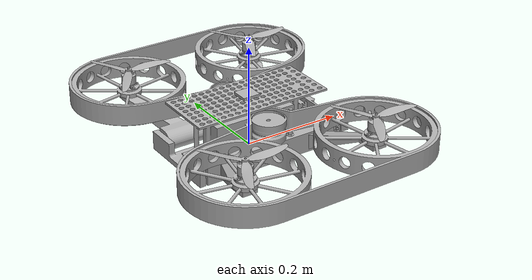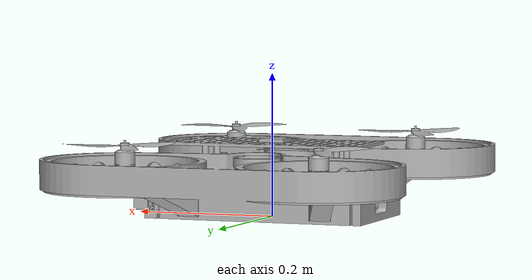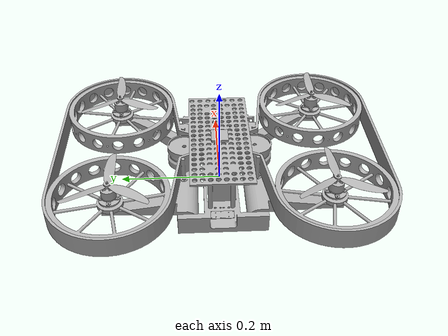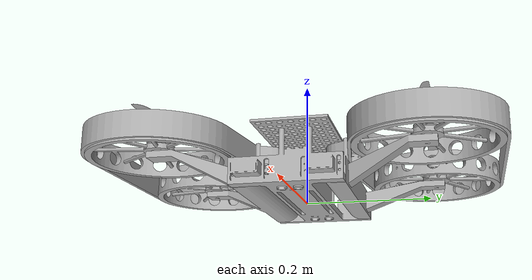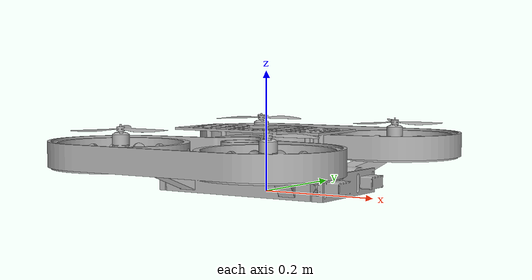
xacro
<?xml version="1.0" ?>
<robot name="fs_bot" xmlns:xacro="http://www.ros.org/wiki/xacro">

<xacro:include filename="$(find fs_bot_description)/urdf/materials.xacro" />
<xacro:include filename="$(find fs_bot_description)/urdf/fs_bot.trans" />
<xacro:include filename="$(find fs_bot_description)/urdf/fs_bot.gazebo" />
<link name="base_link">
  <inertial>
    <origin xyz="0.007571869047072704 -0.00016152471900191312 0.036280217609948026" rpy="0 0 0"/>
    <mass value="1.0059973901812376"/>
    <inertia ixx="0.00168" iyy="0.008545" izz="0.008471" ixy="2e-06" iyz="1e-06" ixz="0.000175"/>
  </inertial>
  <visual>
    <origin xyz="0 0 0" rpy="0 0 0"/>
    <geometry>
      <mesh filename="file://$(find fs_bot_description)/meshes/base_link.stl" scale="0.001 0.001 0.001"/>
    </geometry>
    <material name="silver"/>
  </visual>
  <collision>
    <origin xyz="0 0 0" rpy="0 0 0"/>
    <geometry>
      <mesh filename="file://$(find fs_bot_description)/meshes/base_link.stl" scale="0.001 0.001 0.001"/>
    </geometry>
  </collision>
</link>

<link name="ultrasonic_1_1">
  <inertial>
    <origin xyz="-1.7826697198491948e-05 6.853199746267687e-08 -0.001621573135525474" rpy="0 0 0"/>
    <mass value="0.020157969134118457"/>
    <inertia ixx="4e-06" iyy="1e-06" izz="4e-06" ixy="0.0" iyz="-0.0" ixz="0.0"/>
  </inertial>
  <visual>
    <origin xyz="-0.123239 0.0 -0.0095" rpy="0 0 0"/>
    <geometry>
      <mesh filename="file://$(find fs_bot_description)/meshes/ultrasonic_1_1.stl" scale="0.001 0.001 0.001"/>
    </geometry>
    <material name="silver"/>
  </visual>
  <collision>
    <origin xyz="-0.123239 0.0 -0.0095" rpy="0 0 0"/>
    <geometry>
      <mesh filename="file://$(find fs_bot_description)/meshes/ultrasonic_1_1.stl" scale="0.001 0.001 0.001"/>
    </geometry>
  </collision>
</link>

<link name="ultrasonic_2_1">
  <inertial>
    <origin xyz="1.7386291992535496e-05 6.853199728973652e-08 -0.0016215731355255399" rpy="0 0 0"/>
    <mass value="0.020157969134118832"/>
    <inertia ixx="4e-06" iyy="1e-06" izz="4e-06" ixy="-0.0" iyz="-0.0" ixz="-0.0"/>
  </inertial>
  <visual>
    <origin xyz="0.125 0.0 -0.0095" rpy="0 0 0"/>
    <geometry>
      <mesh filename="file://$(find fs_bot_description)/meshes/ultrasonic_2_1.stl" scale="0.001 0.001 0.001"/>
    </geometry>
    <material name="silver"/>
  </visual>
  <collision>
    <origin xyz="0.125 0.0 -0.0095" rpy="0 0 0"/>
    <geometry>
      <mesh filename="file://$(find fs_bot_description)/meshes/ultrasonic_2_1.stl" scale="0.001 0.001 0.001"/>
    </geometry>
  </collision>
</link>

<link name="imu_link">
  <inertial>
    <origin xyz="-5.7880600094067924e-08 9.739392775881951e-07 0.00250014404383829" rpy="0 0 0"/>
    <mass value="0.046625356642602804"/>
    <inertia ixx="4e-06" iyy="5e-06" izz="9e-06" ixy="-0.0" iyz="-0.0" ixz="0.0"/>
  </inertial>
  <visual>
    <origin xyz="0.00445 0.000361 -0.104939" rpy="0 0 0"/>
    <geometry>
      <mesh filename="file://$(find fs_bot_description)/meshes/imu_1.stl" scale="0.001 0.001 0.001"/>
    </geometry>
    <material name="silver"/>
  </visual>
  <collision>
    <origin xyz="0.00445 0.000361 -0.104939" rpy="0 0 0"/>
    <geometry>
      <mesh filename="file://$(find fs_bot_description)/meshes/imu_1.stl" scale="0.001 0.001 0.001"/>
    </geometry>
  </collision>
</link>

<link name="arm_link_left_1">
  <inertial>
    <origin xyz="-0.1428377228286246 0.058929160039874376 0.021300849529735964" rpy="0 0 0"/>
    <mass value="0.8445351612998211"/>
    <inertia ixx="0.006565" iyy="0.0131" izz="0.018523" ixy="-3e-05" iyz="-0.001174" ixz="-1.3e-05"/>
  </inertial>
  <visual>
    <origin xyz="-0.138232 -0.064 -0.02" rpy="0 0 0"/>
    <geometry>
      <mesh filename="file://$(find fs_bot_description)/meshes/arm_link_left_1.stl" scale="0.001 0.001 0.001"/>
    </geometry>
    <material name="silver"/>
  </visual>
  <collision>
    <origin xyz="-0.138232 -0.064 -0.02" rpy="0 0 0"/>
    <geometry>
      <mesh filename="file://$(find fs_bot_description)/meshes/arm_link_left_1.stl" scale="0.001 0.001 0.001"/>
    </geometry>
  </collision>
</link>

<link name="arm_link_right_1">
  <inertial>
    <origin xyz="-0.14284512463737475 -0.058924861867011846 0.021300399200247292" rpy="0 0 0"/>
    <mass value="0.8444903587044942"/>
    <inertia ixx="0.006565" iyy="0.013099" izz="0.018522" ixy="2.9e-05" iyz="0.001174" ixz="-1.3e-05"/>
  </inertial>
  <visual>
    <origin xyz="-0.138232 0.064637 -0.02" rpy="0 0 0"/>
    <geometry>
      <mesh filename="file://$(find fs_bot_description)/meshes/arm_link_right_1.stl" scale="0.001 0.001 0.001"/>
    </geometry>
    <material name="silver"/>
  </visual>
  <collision>
    <origin xyz="-0.138232 0.064637 -0.02" rpy="0 0 0"/>
    <geometry>
      <mesh filename="file://$(find fs_bot_description)/meshes/arm_link_right_1.stl" scale="0.001 0.001 0.001"/>
    </geometry>
  </collision>
</link>

<link name="track_pulley_left_1">
  <inertial>
    <origin xyz="2.7876095501453563e-07 -2.9271255461149615e-07 0.02132921258113743" rpy="0 0 0"/>
    <mass value="0.8358355047423307"/>
    <inertia ixx="0.000307" iyy="0.000307" izz="0.000445" ixy="0.0" iyz="0.0" ixz="0.0"/>
  </inertial>
  <visual>
    <origin xyz="0.004036 -0.069595 -0.0465" rpy="0 0 0"/>
    <geometry>
      <mesh filename="file://$(find fs_bot_description)/meshes/track_pulley_left_1.stl" scale="0.001 0.001 0.001"/>
    </geometry>
    <material name="silver"/>
  </visual>
  <collision>
    <origin xyz="0.004036 -0.069595 -0.0465" rpy="0 0 0"/>
    <geometry>
      <mesh filename="file://$(find fs_bot_description)/meshes/track_pulley_left_1.stl" scale="0.001 0.001 0.001"/>
    </geometry>
  </collision>
</link>

<link name="track_pulley_right_1">
  <inertial>
    <origin xyz="2.7876095387655703e-07 2.927125502261152e-07 0.021329212581137395" rpy="0 0 0"/>
    <mass value="0.8358355047423313"/>
    <inertia ixx="0.000307" iyy="0.000307" izz="0.000445" ixy="0.0" iyz="0.0" ixz="0.0"/>
  </inertial>
  <visual>
    <origin xyz="0.004036 0.070232 -0.0459" rpy="0 0 0"/>
    <geometry>
      <mesh filename="file://$(find fs_bot_description)/meshes/track_pulley_right_1.stl" scale="0.001 0.001 0.001"/>
    </geometry>
    <material name="silver"/>
  </visual>
  <collision>
    <origin xyz="0.004036 0.070232 -0.0459" rpy="0 0 0"/>
    <geometry>
      <mesh filename="file://$(find fs_bot_description)/meshes/track_pulley_right_1.stl" scale="0.001 0.001 0.001"/>
    </geometry>
  </collision>
</link>

<link name="track_support_fl_1">
  <inertial>
    <origin xyz="-1.8222479994112195e-06 -1.2190745093676458e-06 -0.0017623264611049266" rpy="0 0 0"/>
    <mass value="0.23025526483312964"/>
    <inertia ixx="0.001209" iyy="0.001209" izz="0.002348" ixy="0.0" iyz="-0.0" ixz="0.0"/>
  </inertial>
  <visual>
    <origin xyz="-0.134964 -0.204 -0.0703" rpy="0 0 0"/>
    <geometry>
      <mesh filename="file://$(find fs_bot_description)/meshes/track_support_fl_1.stl" scale="0.001 0.001 0.001"/>
    </geometry>
    <material name="silver"/>
  </visual>
  <collision>
    <origin xyz="-0.134964 -0.204 -0.0703" rpy="0 0 0"/>
    <geometry>
      <mesh filename="file://$(find fs_bot_description)/meshes/track_support_fl_1.stl" scale="0.001 0.001 0.001"/>
    </geometry>
  </collision>
</link>

<link name="track_support_rl_1">
  <inertial>
    <origin xyz="2.2994083317406933e-06 -1.217247173890268e-06 -0.0017759614126644646" rpy="0 0 0"/>
    <mass value="0.23034535568638667"/>
    <inertia ixx="0.001209" iyy="0.001209" izz="0.002348" ixy="-0.0" iyz="-0.0" ixz="0.0"/>
  </inertial>
  <visual>
    <origin xyz="0.143036 -0.204 -0.0703" rpy="0 0 0"/>
    <geometry>
      <mesh filename="file://$(find fs_bot_description)/meshes/track_support_rl_1.stl" scale="0.001 0.001 0.001"/>
    </geometry>
    <material name="silver"/>
  </visual>
  <collision>
    <origin xyz="0.143036 -0.204 -0.0703" rpy="0 0 0"/>
    <geometry>
      <mesh filename="file://$(find fs_bot_description)/meshes/track_support_rl_1.stl" scale="0.001 0.001 0.001"/>
    </geometry>
  </collision>
</link>

<link name="track_support_fr_1">
  <inertial>
    <origin xyz="-1.8222647101551193e-06 1.2193703985696747e-06 -0.0017623264838048242" rpy="0 0 0"/>
    <mass value="0.2302552653293439"/>
    <inertia ixx="0.001209" iyy="0.001209" izz="0.002348" ixy="-0.0" iyz="0.0" ixz="0.0"/>
  </inertial>
  <visual>
    <origin xyz="-0.134964 0.204637 -0.0703" rpy="0 0 0"/>
    <geometry>
      <mesh filename="file://$(find fs_bot_description)/meshes/track_support_fr_1.stl" scale="0.001 0.001 0.001"/>
    </geometry>
    <material name="silver"/>
  </visual>
  <collision>
    <origin xyz="-0.134964 0.204637 -0.0703" rpy="0 0 0"/>
    <geometry>
      <mesh filename="file://$(find fs_bot_description)/meshes/track_support_fr_1.stl" scale="0.001 0.001 0.001"/>
    </geometry>
  </collision>
</link>

<link name="track_support_rr_1">
  <inertial>
    <origin xyz="2.299408277200987e-06 1.217425781907533e-06 -0.0017759614132562274" rpy="0 0 0"/>
    <mass value="0.23034535569885076"/>
    <inertia ixx="0.001209" iyy="0.001209" izz="0.002348" ixy="0.0" iyz="0.0" ixz="0.0"/>
  </inertial>
  <visual>
    <origin xyz="0.143036 0.204637 -0.0703" rpy="0 0 0"/>
    <geometry>
      <mesh filename="file://$(find fs_bot_description)/meshes/track_support_rr_1.stl" scale="0.001 0.001 0.001"/>
    </geometry>
    <material name="silver"/>
  </visual>
  <collision>
    <origin xyz="0.143036 0.204637 -0.0703" rpy="0 0 0"/>
    <geometry>
      <mesh filename="file://$(find fs_bot_description)/meshes/track_support_rr_1.stl" scale="0.001 0.001 0.001"/>
    </geometry>
  </collision>
</link>

<link name="bldc_motor_1_1">
  <inertial>
    <origin xyz="-3.13401487095355e-07 5.924505283028125e-07 0.013696512860461751" rpy="0 0 0"/>
    <mass value="0.10785871798850041"/>
    <inertia ixx="1.1e-05" iyy="1.1e-05" izz="1e-05" ixy="0.0" iyz="0.0" ixz="-0.0"/>
  </inertial>
  <visual>
    <origin xyz="-0.134964 -0.204 -0.0773" rpy="0 0 0"/>
    <geometry>
      <mesh filename="file://$(find fs_bot_description)/meshes/bldc_motor_1_1.stl" scale="0.001 0.001 0.001"/>
    </geometry>
    <material name="silver"/>
  </visual>
  <collision>
    <origin xyz="-0.134964 -0.204 -0.0773" rpy="0 0 0"/>
    <geometry>
      <mesh filename="file://$(find fs_bot_description)/meshes/bldc_motor_1_1.stl" scale="0.001 0.001 0.001"/>
    </geometry>
  </collision>
</link>

<link name="propeller_1_1">
  <inertial>
    <origin xyz="-4.909743015396595e-06 -9.120790755434705e-06 0.002979288442366501" rpy="0 0 0"/>
    <mass value="0.004466869702984192"/>
    <inertia ixx="3e-06" iyy="3e-06" izz="6e-06" ixy="-0.0" iyz="-0.0" ixz="-0.0"/>
  </inertial>
  <visual>
    <origin xyz="-0.134964 -0.204 -0.1062" rpy="0 0 0"/>
    <geometry>
      <mesh filename="file://$(find fs_bot_description)/meshes/propeller_1_1.stl" scale="0.001 0.001 0.001"/>
    </geometry>
    <material name="silver"/>
  </visual>
  <collision>
    <origin xyz="-0.134964 -0.204 -0.1062" rpy="0 0 0"/>
    <geometry>
      <mesh filename="file://$(find fs_bot_description)/meshes/propeller_1_1.stl" scale="0.001 0.001 0.001"/>
    </geometry>
  </collision>
</link>

<link name="bldc_motor_2_1">
  <inertial>
    <origin xyz="8.709233691173157e-07 5.924504642706996e-07 0.013696512860478446" rpy="0 0 0"/>
    <mass value="0.1078587179885"/>
    <inertia ixx="1.1e-05" iyy="1.1e-05" izz="1e-05" ixy="-0.0" iyz="0.0" ixz="0.0"/>
  </inertial>
  <visual>
    <origin xyz="0.143036 -0.204 -0.0773" rpy="0 0 0"/>
    <geometry>
      <mesh filename="file://$(find fs_bot_description)/meshes/bldc_motor_2_1.stl" scale="0.001 0.001 0.001"/>
    </geometry>
    <material name="silver"/>
  </visual>
  <collision>
    <origin xyz="0.143036 -0.204 -0.0773" rpy="0 0 0"/>
    <geometry>
      <mesh filename="file://$(find fs_bot_description)/meshes/bldc_motor_2_1.stl" scale="0.001 0.001 0.001"/>
    </geometry>
  </collision>
</link>

<link name="propeller_2_1">
  <inertial>
    <origin xyz="-4.909743039738235e-06 9.120790688516012e-06 0.004270711557639362" rpy="0 0 0"/>
    <mass value="0.004466869702984191"/>
    <inertia ixx="3e-06" iyy="3e-06" izz="6e-06" ixy="0.0" iyz="-0.0" ixz="0.0"/>
  </inertial>
  <visual>
    <origin xyz="0.143036 -0.204 -0.1062" rpy="0 0 0"/>
    <geometry>
      <mesh filename="file://$(find fs_bot_description)/meshes/propeller_2_1.stl" scale="0.001 0.001 0.001"/>
    </geometry>
    <material name="silver"/>
  </visual>
  <collision>
    <origin xyz="0.143036 -0.204 -0.1062" rpy="0 0 0"/>
    <geometry>
      <mesh filename="file://$(find fs_bot_description)/meshes/propeller_2_1.stl" scale="0.001 0.001 0.001"/>
    </geometry>
  </collision>
</link>

<link name="bldc_motor_3_1">
  <inertial>
    <origin xyz="-2.9992360750519254e-07 -5.783959688976381e-07 0.013696512860461599" rpy="0 0 0"/>
    <mass value="0.1078587179884996"/>
    <inertia ixx="1.1e-05" iyy="1.1e-05" izz="1e-05" ixy="-0.0" iyz="-0.0" ixz="-0.0"/>
  </inertial>
  <visual>
    <origin xyz="-0.134964 0.204637 -0.0773" rpy="0 0 0"/>
    <geometry>
      <mesh filename="file://$(find fs_bot_description)/meshes/bldc_motor_3_1.stl" scale="0.001 0.001 0.001"/>
    </geometry>
    <material name="silver"/>
  </visual>
  <collision>
    <origin xyz="-0.134964 0.204637 -0.0773" rpy="0 0 0"/>
    <geometry>
      <mesh filename="file://$(find fs_bot_description)/meshes/bldc_motor_3_1.stl" scale="0.001 0.001 0.001"/>
    </geometry>
  </collision>
</link>

<link name="propeller_3_1">
  <inertial>
    <origin xyz="-4.909743015396595e-06 9.120790755351438e-06 0.004270711557622722" rpy="0 0 0"/>
    <mass value="0.004466869702984214"/>
    <inertia ixx="3e-06" iyy="3e-06" izz="6e-06" ixy="0.0" iyz="-0.0" ixz="0.0"/>
  </inertial>
  <visual>
    <origin xyz="-0.134964 0.204637 -0.1062" rpy="0 0 0"/>
    <geometry>
      <mesh filename="file://$(find fs_bot_description)/meshes/propeller_3_1.stl" scale="0.001 0.001 0.001"/>
    </geometry>
    <material name="silver"/>
  </visual>
  <collision>
    <origin xyz="-0.134964 0.204637 -0.1062" rpy="0 0 0"/>
    <geometry>
      <mesh filename="file://$(find fs_bot_description)/meshes/propeller_3_1.stl" scale="0.001 0.001 0.001"/>
    </geometry>
  </collision>
</link>

<link name="bldc_motor_4_1">
  <inertial>
    <origin xyz="8.574454892773531e-07 -5.783959054761478e-07 0.013696512860478752" rpy="0 0 0"/>
    <mass value="0.10785871798849818"/>
    <inertia ixx="1.1e-05" iyy="1.1e-05" izz="1e-05" ixy="0.0" iyz="-0.0" ixz="0.0"/>
  </inertial>
  <visual>
    <origin xyz="0.143036 0.204637 -0.0773" rpy="0 0 0"/>
    <geometry>
      <mesh filename="file://$(find fs_bot_description)/meshes/bldc_motor_4_1.stl" scale="0.001 0.001 0.001"/>
    </geometry>
    <material name="silver"/>
  </visual>
  <collision>
    <origin xyz="0.143036 0.204637 -0.0773" rpy="0 0 0"/>
    <geometry>
      <mesh filename="file://$(find fs_bot_description)/meshes/bldc_motor_4_1.stl" scale="0.001 0.001 0.001"/>
    </geometry>
  </collision>
</link>

<link name="propeller_4_1">
  <inertial>
    <origin xyz="-4.909743040348857e-06 -9.120790688543767e-06 0.002979288442383196" rpy="0 0 0"/>
    <mass value="0.004466869702984186"/>
    <inertia ixx="3e-06" iyy="3e-06" izz="6e-06" ixy="-0.0" iyz="-0.0" ixz="-0.0"/>
  </inertial>
  <visual>
    <origin xyz="0.143036 0.204637 -0.1062" rpy="0 0 0"/>
    <geometry>
      <mesh filename="file://$(find fs_bot_description)/meshes/propeller_4_1.stl" scale="0.001 0.001 0.001"/>
    </geometry>
    <material name="silver"/>
  </visual>
  <collision>
    <origin xyz="0.143036 0.204637 -0.1062" rpy="0 0 0"/>
    <geometry>
      <mesh filename="file://$(find fs_bot_description)/meshes/propeller_4_1.stl" scale="0.001 0.001 0.001"/>
    </geometry>
  </collision>
</link>

<joint name="Rigid 1" type="fixed">
  <origin xyz="0.123239 0.0 0.0095" rpy="0 0 0"/>
  <parent link="base_link"/>
  <child link="ultrasonic_1_1"/>
</joint>

<joint name="Rigid 2" type="fixed">
  <origin xyz="-0.125 0.0 0.0095" rpy="0 0 0"/>
  <parent link="base_link"/>
  <child link="ultrasonic_2_1"/>
</joint>

<joint name="Rigid 3" type="fixed">
  <origin xyz="-0.00445 -0.000361 0.104939" rpy="0 0 0"/>
  <parent link="base_link"/>
  <child link="imu_link"/>
</joint>

<joint name="arm_base_left_joint" type="revolute">
  <origin xyz="0.138232 0.064 0.02" rpy="0 0 0"/>
  <parent link="base_link"/>
  <child link="arm_link_left_1"/>
  <axis xyz="1.0 0.0 0.0"/>
  <limit effort="1000.0" lower="${-pi/2}" upper="0.0" velocity="0.1"/>
</joint>

<joint name="arm_base_right_joint" type="revolute">
  <origin xyz="0.138232 -0.064637 0.02" rpy="0 0 0"/>
  <parent link="base_link"/>
  <child link="arm_link_right_1"/>
  <axis xyz="-1.0 0.0 0.0"/>
  <limit effort="1000.0" lower="${-pi/2}" upper="0.0" velocity="0.1"/>
</joint>

<joint name="pulley_left_joint" type="continuous">
  <origin xyz="-0.142268 0.005595 0.0265" rpy="0 0 0"/>
  <parent link="arm_link_left_1"/>
  <child link="track_pulley_left_1"/>
  <axis xyz="-0.0 -0.0 1.0"/>
</joint>

<joint name="puller_right_joint" type="continuous">
  <origin xyz="-0.142268 -0.005595 0.0259" rpy="0 0 0"/>
  <parent link="arm_link_right_1"/>
  <child link="track_pulley_right_1"/>
  <axis xyz="0.0 -0.0 -1.0"/>
</joint>

<joint name="armshield_fl_joint" type="continuous">
  <origin xyz="-0.003268 0.14 0.0503" rpy="0 0 0"/>
  <parent link="arm_link_left_1"/>
  <child link="track_support_fl_1"/>
  <axis xyz="0.0 0.0 1.0"/>
</joint>

<joint name="armshield_rl_joint" type="continuous">
  <origin xyz="-0.281268 0.14 0.0503" rpy="0 0 0"/>
  <parent link="arm_link_left_1"/>
  <child link="track_support_rl_1"/>
  <axis xyz="-0.0 -0.0 -1.0"/>
</joint>

<joint name="armshield_fr_joint" type="continuous">
  <origin xyz="-0.003268 -0.14 0.0503" rpy="0 0 0"/>
  <parent link="arm_link_right_1"/>
  <child link="track_support_fr_1"/>
  <axis xyz="-0.0 0.0 -1.0"/>
</joint>

<joint name="armshield_rr_joint" type="continuous">
  <origin xyz="-0.281268 -0.14 0.0503" rpy="0 0 0"/>
  <parent link="arm_link_right_1"/>
  <child link="track_support_rr_1"/>
  <axis xyz="0.0 -0.0 1.0"/>
</joint>

<joint name="Rigid 12" type="fixed">
  <origin xyz="-0.003268 0.14 0.0573" rpy="0 0 0"/>
  <parent link="arm_link_left_1"/>
  <child link="bldc_motor_1_1"/>
</joint>

<joint name="prop_1_joint" type="continuous">
  <origin xyz="0.0 0.0 0.0289" rpy="0 0 0"/>
  <parent link="bldc_motor_1_1"/>
  <child link="propeller_1_1"/>
  <axis xyz="-0.0 -0.0 -1.0"/>
</joint>

<joint name="Rigid 14" type="fixed">
  <origin xyz="-0.281268 0.14 0.0573" rpy="0 0 0"/>
  <parent link="arm_link_left_1"/>
  <child link="bldc_motor_2_1"/>
</joint>

<joint name="prop_2_joint" type="continuous">
  <origin xyz="0.0 0.0 0.0289" rpy="0 0 0"/>
  <parent link="bldc_motor_2_1"/>
  <child link="propeller_2_1"/>
  <axis xyz="0.0 0.0 1.0"/>
</joint>

<joint name="Rigid 16" type="fixed">
  <origin xyz="-0.003268 -0.14 0.0573" rpy="0 0 0"/>
  <parent link="arm_link_right_1"/>
  <child link="bldc_motor_3_1"/>
</joint>

<joint name="prop_3_joint" type="continuous">
  <origin xyz="0.0 0.0 0.0289" rpy="0 0 0"/>
  <parent link="bldc_motor_3_1"/>
  <child link="propeller_3_1"/>
  <axis xyz="0.0 -0.0 1.0"/>
</joint>

<joint name="Rigid 18" type="fixed">
  <origin xyz="-0.281268 -0.14 0.0573" rpy="0 0 0"/>
  <parent link="arm_link_right_1"/>
  <child link="bldc_motor_4_1"/>
</joint>

<joint name="prop_4_joint" type="continuous">
  <origin xyz="0.0 0.0 0.0289" rpy="0 0 0"/>
  <parent link="bldc_motor_4_1"/>
  <child link="propeller_4_1"/>
  <axis xyz="-0.0 0.0 -1.0"/>
</joint>

<!-- dummy parameters -->

<!--  transformation control plugin setup  -->
<gazebo>
  <plugin name="left_force" filename="libgazebo_ros_force.so" >
      <ros>
          <namespace>/fs_bot</namespace>
          <remapping>gazebo_ros_force:=left_arm_force</remapping>
      </ros>
      <link_name>arm_link_left_1</link_name>
      <!-- not to be changed -->
      <force_frame>link</force_frame>
  </plugin>
</gazebo>

<gazebo>
  <plugin name="right_force" filename="libgazebo_ros_force.so" >
      <ros>
          <namespace>/fs_bot</namespace>
          <remapping>gazebo_ros_force:=right_arm_force</remapping>
      </ros>
      <link_name>arm_link_right_1</link_name>
      <!-- not to be changed -->
      <force_frame>link</force_frame>
  </plugin>
</gazebo>

    <!-- For Drone controlling -->
<gazebo>
  <plugin name="drone_base_stabilizer" filename="libgazebo_ros_force.so" >
      <ros>
          <namespace>/fs_bot</namespace>
          <remapping>gazebo_ros_force:=drone_stabilizer</remapping>
      </ros>
      <link_name>base_link</link_name>
      <!-- not to be changed -->
      <force_frame>link</force_frame>
  </plugin>
</gazebo>

<gazebo>
  <plugin name="drone_motor_controller_fl" filename="libgazebo_ros_force.so" >
      <ros>
          <namespace>/fs_bot</namespace>
          <remapping>gazebo_ros_force:=drone_motor_1</remapping>
      </ros>
      <link_name>propeller_1_1</link_name>
      <!-- not to be changed -->
      <force_frame>link</force_frame>
  </plugin>
</gazebo>

<gazebo>
  <plugin name="drone_motor_controller_rl" filename="libgazebo_ros_force.so" >
      <ros>
          <namespace>/fs_bot</namespace>
          <remapping>gazebo_ros_force:=drone_motor_2</remapping>
      </ros>
      <link_name>propeller_2_1</link_name>
      <!-- not to be changed -->
      <force_frame>link</force_frame>
  </plugin>
</gazebo>

<gazebo>
  <plugin name="drone_motor_controller_fr" filename="libgazebo_ros_force.so" >
      <ros>
          <namespace>/fs_bot</namespace>
          <remapping>gazebo_ros_force:=drone_motor_3</remapping>
      </ros>
      <link_name>propeller_3_1</link_name>
      <!-- not to be changed -->
      <force_frame>link</force_frame>
  </plugin>
</gazebo>

<gazebo>
  <plugin name="drone_motor_controller_rr" filename="libgazebo_ros_force.so" >
      <ros>
          <namespace>/fs_bot</namespace>
          <remapping>gazebo_ros_force:=drone_motor_4</remapping>
      </ros>
      <link_name>propeller_4_1</link_name>
      <!-- not to be changed -->
      <force_frame>link</force_frame>
  </plugin>
</gazebo>

<!-- make shift joint sensor plugins -->
<gazebo>
    <plugin name="p3d_left_arm_pose" filename="libgazebo_ros_p3d.so">
      <topic_name>odom</topic_name>
      <ros>
          <namespace>/fs_bot</namespace>
          <remapping>odom:=left_arm_pose</remapping>
      </ros>
      <always_on>true</always_on>
      <update_rate>100.0</update_rate>
      <body_name>arm_link_left_1</body_name>
      <gaussian_noise>0.00001</gaussian_noise>
      <frame_name>world</frame_name>
    </plugin>
</gazebo>

<gazebo>
    <plugin name="p3d_right_arm_pose" filename="libgazebo_ros_p3d.so">
      <topic_name>odom</topic_name>
      <ros>
          <namespace>/fs_bot</namespace>
          <remapping>odom:=right_arm_pose</remapping>
      </ros>
      <always_on>true</always_on>
      <update_rate>100.0</update_rate>
      <body_name>arm_link_right_1</body_name>
      <gaussian_noise>0.00001</gaussian_noise>
      <frame_name>world</frame_name>
    </plugin>
</gazebo>

<!-- Mobile robot controller plugin setup -->
<gazebo>
    <plugin name="object_controller" filename="libgazebo_ros_planar_move.so">
        <ros>
            <namespace>/fs_bot</namespace>
            <remapping>cmd_vel:=cmd_vel</remapping>
            <remapping>odom:=odom_pose</remapping>
        </ros>
        <robotBaseFrame>base_link</robotBaseFrame>
    </plugin>
</gazebo>

<gazebo>
  <plugin name="shield_controller_fl" filename="libgazebo_ros_force.so" >
      <ros>
          <namespace>/fs_bot</namespace>
          <remapping>gazebo_ros_force:=shield_motion_1</remapping>
      </ros>
      <link_name>track_support_fl_1</link_name>
      <!-- not to be changed -->
      <force_frame>link</force_frame>
  </plugin>
</gazebo>

<gazebo>
  <plugin name="shield_controller_rl" filename="libgazebo_ros_force.so" >
      <ros>
          <namespace>/fs_bot</namespace>
          <remapping>gazebo_ros_force:=shield_motion_2</remapping>
      </ros>
      <link_name>track_support_rl_1</link_name>
      <!-- not to be changed -->
      <force_frame>link</force_frame>
  </plugin>
</gazebo>

<gazebo>
  <plugin name="shield_controller_fr" filename="libgazebo_ros_force.so" >
      <ros>
          <namespace>/fs_bot</namespace>
          <remapping>gazebo_ros_force:=shield_motion_3</remapping>
      </ros>
      <link_name>track_support_fr_1</link_name>
      <!-- not to be changed -->
      <force_frame>link</force_frame>
  </plugin>
</gazebo>

<gazebo>
  <plugin name="shield_controller_rr" filename="libgazebo_ros_force.so" >
      <ros>
          <namespace>/fs_bot</namespace>
          <remapping>gazebo_ros_force:=shield_motion_4</remapping>
      </ros>
      <link_name>track_support_rr_1</link_name>
      <!-- not to be changed -->
      <force_frame>link</force_frame>
  </plugin>
</gazebo>

<!--  Bot IMU sensor  -->
<gazebo reference="imu_link">
  <gravity>true</gravity>
  <sensor name="imu_sensor" type="imu">
    <always_on>true</always_on>
    <update_rate>100</update_rate>
    <visualize>true</visualize>
    <topic>__default_topic__</topic>
    <plugin filename="libgazebo_ros_imu_sensor.so" name="imu_plugin">
      <ros>
        <remapping>~/out:=/imu</remapping>
      </ros>
      <bodyName>imu_link</bodyName>
      <updateRateHZ>10.0</updateRateHZ>
      <gaussianNoise>0.0</gaussianNoise>
      <xyzOffset>0 0 0</xyzOffset>
      <rpyOffset>0 0 0</rpyOffset>
      <frameName>imu_link</frameName>
      <initial_orientation_as_reference>false</initial_orientation_as_reference>
    </plugin>
    <pose>0 0 0 0 0 0</pose>
  </sensor>
</gazebo>

</robot>

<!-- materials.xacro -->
<robot name="fs_bot" xmlns:xacro="http://www.ros.org/wiki/xacro" >

<material name="silver">
  <color rgba="0.700 0.700 0.700 1.000"/>
</material>

</robot>

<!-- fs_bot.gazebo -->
<robot name="fs_bot" xmlns:xacro="http://www.ros.org/wiki/xacro" >

<xacro:property name="body_color" value="Gazebo/ZincYellow" />

<gazebo>
  <plugin name="control" filename="libgazebo_ros_control.so"/>
</gazebo>

<gazebo reference="base_link">
  <material name="body_color" value="Gazebo/RedBright" />
  <mu1>0.2</mu1>
  <mu2>0.2</mu2>
  <self_collide>true</self_collide>
  <gravity>true</gravity>
</gazebo>

<gazebo reference="ultrasonic_1_1">
  <material name="body_color" value="Gazebo/SkyBlue"/>
  <mu1>0.2</mu1>
  <mu2>0.2</mu2>
  <self_collide>true</self_collide>
</gazebo>

<gazebo reference="ultrasonic_2_1">
  <material name="body_color" value="Gazebo/SkyBlue" />
  <mu1>0.2</mu1>
  <mu2>0.2</mu2>
  <self_collide>true</self_collide>
</gazebo>

<gazebo reference="imu_link">
  <material name="body_color" value="Gazebo/Green" />
  <mu1>0.2</mu1>
  <mu2>0.2</mu2>
  <self_collide>true</self_collide>
</gazebo>

<gazebo reference="arm_link_left_1">
  <material name="body_color" value="Gazebo/Grey" />
  <mu1>0.2</mu1>
  <mu2>0.2</mu2>
  <self_collide>true</self_collide>
</gazebo>

<gazebo reference="arm_link_right_1">
  <material name="body_color" value="Gazebo/Grey" />
  <mu1>0.2</mu1>
  <mu2>0.2</mu2>
  <self_collide>true</self_collide>
</gazebo>

<gazebo reference="track_pulley_left_1">
  <material name="body_color" value="Gazebo/Silver" />
  <mu1>0.2</mu1>
  <mu2>0.2</mu2>
  <self_collide>true</self_collide>
</gazebo>

<gazebo reference="track_pulley_right_1">
  <material name="body_color" value="Gazebo/Silver" />
  <mu1>0.2</mu1>
  <mu2>0.2</mu2>
  <self_collide>true</self_collide>
</gazebo>

<gazebo reference="track_support_fl_1">
  <material>${body_color}</material>
  <mu1>0.2</mu1>
  <mu2>0.2</mu2>
  <self_collide>true</self_collide>
</gazebo>

<gazebo reference="track_support_rl_1">
  <material>${body_color}</material>
  <mu1>0.2</mu1>
  <mu2>0.2</mu2>
  <self_collide>true</self_collide>
</gazebo>

<gazebo reference="track_support_fr_1">
  <material>${body_color}</material>
  <mu1>0.2</mu1>
  <mu2>0.2</mu2>
  <self_collide>true</self_collide>
</gazebo>

<gazebo reference="track_support_rr_1">
  <material>${body_color}</material>
  <mu1>0.2</mu1>
  <mu2>0.2</mu2>
  <self_collide>true</self_collide>
</gazebo>

<gazebo reference="bldc_motor_1_1">
  <material name="body_color" value="Gazebo/RedBright" />
  <mu1>0.2</mu1>
  <mu2>0.2</mu2>
  <self_collide>true</self_collide>
</gazebo>

<gazebo reference="propeller_1_1">
  <material name="body_color" value="Gazebo/BlueTransparent" />
  <mu1>0.2</mu1>
  <mu2>0.2</mu2>
  <self_collide>true</self_collide>
</gazebo>

<gazebo reference="bldc_motor_2_1">
  <material name="body_color" value="Gazebo/RedBright" />
  <mu1>0.2</mu1>
  <mu2>0.2</mu2>
  <self_collide>true</self_collide>
</gazebo>

<gazebo reference="propeller_2_1">
  <material name="body_color" value="Gazebo/BlueTransparent" />
  <mu1>0.2</mu1>
  <mu2>0.2</mu2>
  <self_collide>true</self_collide>
</gazebo>

<gazebo reference="bldc_motor_3_1">
  <material name="body_color" value="Gazebo/RedBright" />
  <mu1>0.2</mu1>
  <mu2>0.2</mu2>
  <self_collide>true</self_collide>
</gazebo>

<gazebo reference="propeller_3_1">
  <material name="body_color" value="Gazebo/BlueTransparent" />
  <mu1>0.2</mu1>
  <mu2>0.2</mu2>
  <self_collide>true</self_collide>
</gazebo>

<gazebo reference="bldc_motor_4_1">
  <material name="body_color" value="Gazebo/RedBright" />
  <mu1>0.2</mu1>
  <mu2>0.2</mu2>
  <self_collide>true</self_collide>
</gazebo>

<gazebo reference="propeller_4_1">
  <material name="body_color" value="Gazebo/BlueTransparent" />
  <mu1>0.2</mu1>
  <mu2>0.2</mu2>
  <self_collide>true</self_collide>
</gazebo>

</robot>
